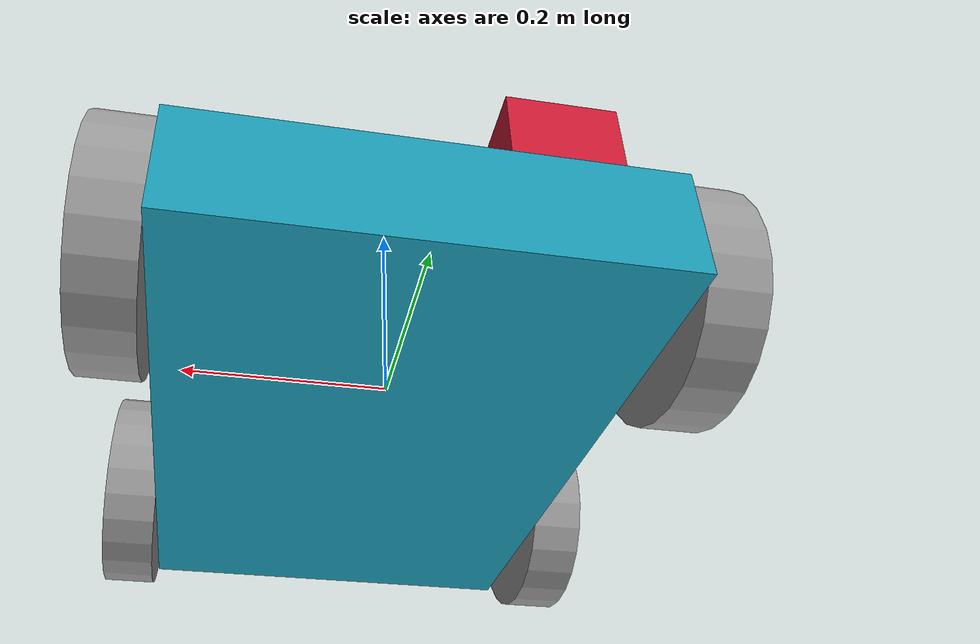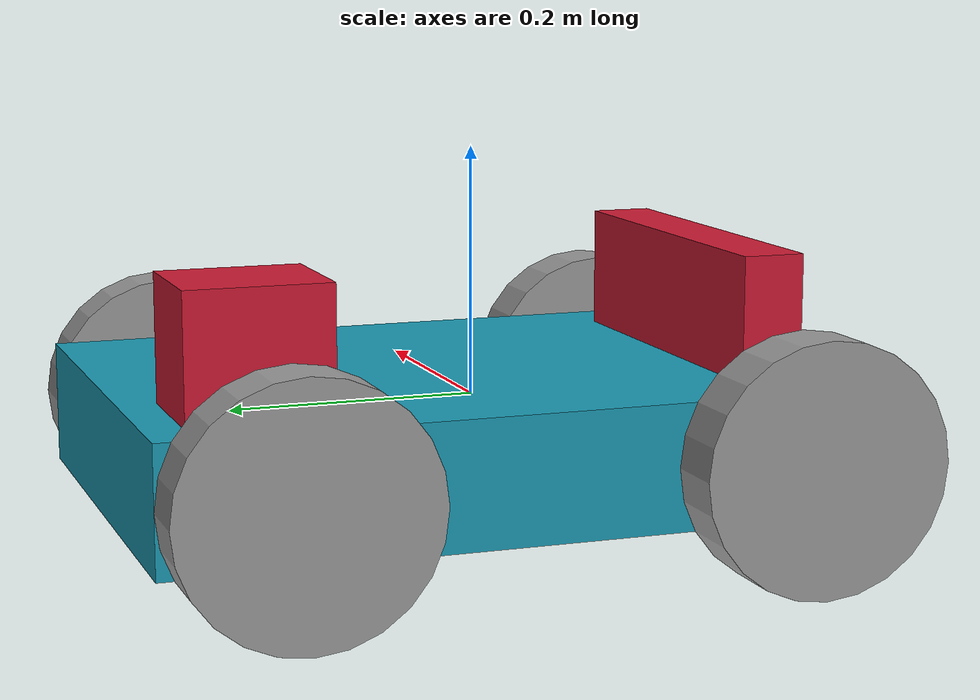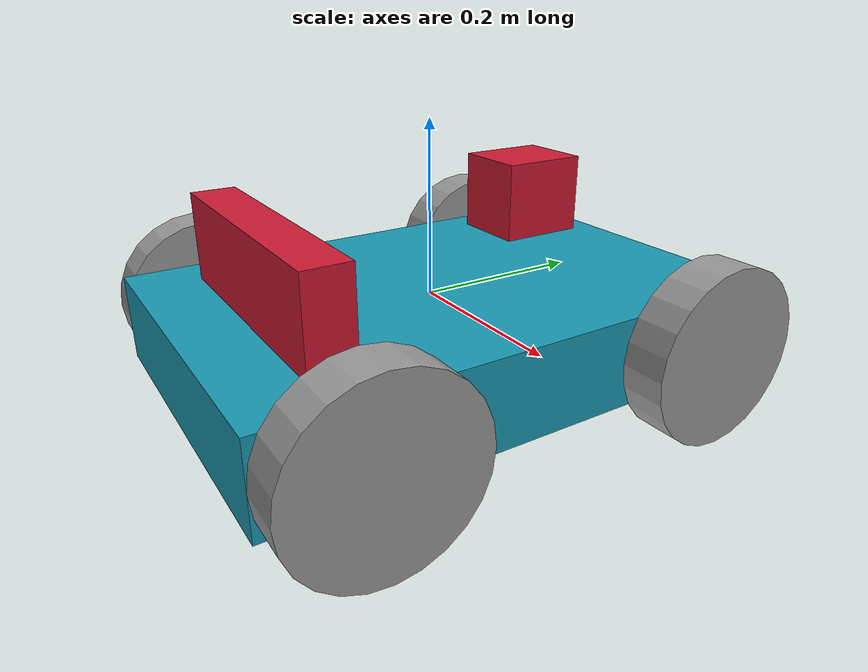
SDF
<?xml version='1.0'?>
<sdf version='1.7'>
  <model name='RoverBot'>
    <link name='link_1'>
      <inertial>
        <mass>1</mass>
        <inertia>
          <ixx>0.166667</ixx>
          <ixy>0</ixy>
          <ixz>0</ixz>
          <iyy>0.166667</iyy>
          <iyz>0</iyz>
          <izz>0.166667</izz>
        </inertia>
        <pose>0 0 0 0 -0 0</pose>
      </inertial>
      <pose>0.016896 -0.001903 -0.028571 0 -0 0</pose>
      <gravity>1</gravity>
      <self_collide>0</self_collide>
      <kinematic>0</kinematic>
      <enable_wind>0</enable_wind>
      <visual name='visual'>
        <pose>0 0 0 0 -0 0</pose>
        <geometry>
          <box>
            <size>0.4 0.6 0.1</size>
          </box>
        </geometry>
        <material>
          <lighting>1</lighting>
          <script>
            <uri>file://media/materials/scripts/gazebo.material</uri>
            <name>Gazebo/Grey</name>
          </script>
          <shader type='pixel'>
            <normal_map>__default__</normal_map>
          </shader>
          <ambient>0.1 0.6 0.7 1</ambient>
          <diffuse>0.7 0.7 0.7 1</diffuse>
          <specular>0.01 0.01 0.01 1</specular>
          <emissive>0 0 0 1</emissive>
        </material>
        <transparency>0</transparency>
        <cast_shadows>1</cast_shadows>
      </visual>
      <collision name='collision'>
        <laser_retro>0</laser_retro>
        <max_contacts>10</max_contacts>
        <pose>0 0 0 0 -0 0</pose>
        <geometry>
          <box>
            <size>0.4 0.6 0.1</size>
          </box>
        </geometry>
        <surface>
          <friction>
            <ode>
              <mu>1</mu>
              <mu2>1</mu2>
              <fdir1>0 0 0</fdir1>
              <slip1>0</slip1>
              <slip2>0</slip2>
            </ode>
            <torsional>
              <coefficient>1</coefficient>
              <patch_radius>0</patch_radius>
              <surface_radius>0</surface_radius>
              <use_patch_radius>1</use_patch_radius>
              <ode>
                <slip>0</slip>
              </ode>
            </torsional>
          </friction>
          <bounce>
            <restitution_coefficient>0</restitution_coefficient>
            <threshold>1e+06</threshold>
          </bounce>
          <contact>
            <collide_without_contact>0</collide_without_contact>
            <collide_without_contact_bitmask>1</collide_without_contact_bitmask>
            <collide_bitmask>1</collide_bitmask>
            <ode>
              <soft_cfm>0</soft_cfm>
              <soft_erp>0.2</soft_erp>
              <kp>1e+13</kp>
              <kd>1</kd>
              <max_vel>0.01</max_vel>
              <min_depth>0</min_depth>
            </ode>
            <bullet>
              <split_impulse>1</split_impulse>
              <split_impulse_penetration_threshold>-0.01</split_impulse_penetration_threshold>
              <soft_cfm>0</soft_cfm>
              <soft_erp>0.2</soft_erp>
              <kp>1e+13</kp>
              <kd>1</kd>
            </bullet>
          </contact>
        </surface>
      </collision>
    </link>
    <link name='link_2'>
      <inertial>
        <mass>1</mass>
        <inertia>
          <ixx>0.145833</ixx>
          <ixy>0</ixy>
          <ixz>0</ixz>
          <iyy>0.145833</iyy>
          <iyz>0</iyz>
          <izz>0.125</izz>
        </inertia>
        <pose>0 0 0 0 -0 0</pose>
      </inertial>
      <pose>0.241896 -0.201903 -0.028571 0 1.5707 0</pose>
      <gravity>1</gravity>
      <self_collide>0</self_collide>
      <kinematic>0</kinematic>
      <enable_wind>0</enable_wind>
      <visual name='visual'>
        <pose>0 0 0 0 -0 0</pose>
        <geometry>
          <cylinder>
            <radius>0.1</radius>
            <length>0.05</length>
          </cylinder>
        </geometry>
        <material>
          <lighting>1</lighting>
          <script>
            <uri>file://media/materials/scripts/gazebo.material</uri>
            <name>Gazebo/Grey</name>
          </script>
          <shader type='pixel'>
            <normal_map>__default__</normal_map>
          </shader>
          <ambient>0 0 0 1</ambient>
          <diffuse>0.7 0.7 0.7 1</diffuse>
          <specular>0.01 0.01 0.01 1</specular>
          <emissive>0 0 0 1</emissive>
        </material>
        <transparency>0</transparency>
        <cast_shadows>1</cast_shadows>
      </visual>
      <collision name='collision'>
        <laser_retro>0</laser_retro>
        <max_contacts>10</max_contacts>
        <pose>0 0 0 0 -0 0</pose>
        <geometry>
          <cylinder>
            <radius>0.1</radius>
            <length>0.05</length>
          </cylinder>
        </geometry>
        <surface>
          <friction>
            <ode>
              <mu>1</mu>
              <mu2>1</mu2>
              <fdir1>0 0 0</fdir1>
              <slip1>0</slip1>
              <slip2>0</slip2>
            </ode>
            <torsional>
              <coefficient>1</coefficient>
              <patch_radius>0</patch_radius>
              <surface_radius>0</surface_radius>
              <use_patch_radius>1</use_patch_radius>
              <ode>
                <slip>0</slip>
              </ode>
            </torsional>
          </friction>
          <bounce>
            <restitution_coefficient>0</restitution_coefficient>
            <threshold>1e+06</threshold>
          </bounce>
          <contact>
            <collide_without_contact>0</collide_without_contact>
            <collide_without_contact_bitmask>1</collide_without_contact_bitmask>
            <collide_bitmask>1</collide_bitmask>
            <ode>
              <soft_cfm>0</soft_cfm>
              <soft_erp>0.2</soft_erp>
              <kp>1e+13</kp>
              <kd>1</kd>
              <max_vel>0.01</max_vel>
              <min_depth>0</min_depth>
            </ode>
            <bullet>
              <split_impulse>1</split_impulse>
              <split_impulse_penetration_threshold>-0.01</split_impulse_penetration_threshold>
              <soft_cfm>0</soft_cfm>
              <soft_erp>0.2</soft_erp>
              <kp>1e+13</kp>
              <kd>1</kd>
            </bullet>
          </contact>
        </surface>
      </collision>
    </link>
    <link name='link_2_clone'>
      <inertial>
        <mass>1</mass>
        <inertia>
          <ixx>0.145833</ixx>
          <ixy>0</ixy>
          <ixz>0</ixz>
          <iyy>0.145833</iyy>
          <iyz>0</iyz>
          <izz>0.125</izz>
        </inertia>
        <pose>0 0 0 0 -0 0</pose>
      </inertial>
      <pose>0.241896 0.198097 -0.028571 0 1.5707 0</pose>
      <gravity>1</gravity>
      <self_collide>0</self_collide>
      <kinematic>0</kinematic>
      <enable_wind>0</enable_wind>
      <visual name='visual'>
        <pose>0 0 0 0 -0 0</pose>
        <geometry>
          <cylinder>
            <radius>0.1</radius>
            <length>0.05</length>
          </cylinder>
        </geometry>
        <material>
          <lighting>1</lighting>
          <script>
            <uri>file://media/materials/scripts/gazebo.material</uri>
            <name>Gazebo/Grey</name>
          </script>
          <shader type='pixel'>
            <normal_map>__default__</normal_map>
          </shader>
          <ambient>0 0 0 1</ambient>
          <diffuse>0.7 0.7 0.7 1</diffuse>
          <specular>0.01 0.01 0.01 1</specular>
          <emissive>0 0 0 1</emissive>
        </material>
        <transparency>0</transparency>
        <cast_shadows>1</cast_shadows>
      </visual>
      <collision name='collision'>
        <laser_retro>0</laser_retro>
        <max_contacts>10</max_contacts>
        <pose>0 0 0 0 -0 0</pose>
        <geometry>
          <cylinder>
            <radius>0.1</radius>
            <length>0.05</length>
          </cylinder>
        </geometry>
        <surface>
          <friction>
            <ode>
              <mu>1</mu>
              <mu2>1</mu2>
              <fdir1>0 0 0</fdir1>
              <slip1>0</slip1>
              <slip2>0</slip2>
            </ode>
            <torsional>
              <coefficient>1</coefficient>
              <patch_radius>0</patch_radius>
              <surface_radius>0</surface_radius>
              <use_patch_radius>1</use_patch_radius>
              <ode>
                <slip>0</slip>
              </ode>
            </torsional>
          </friction>
          <bounce>
            <restitution_coefficient>0</restitution_coefficient>
            <threshold>1e+06</threshold>
          </bounce>
          <contact>
            <collide_without_contact>0</collide_without_contact>
            <collide_without_contact_bitmask>1</collide_without_contact_bitmask>
            <collide_bitmask>1</collide_bitmask>
            <ode>
              <soft_cfm>0</soft_cfm>
              <soft_erp>0.2</soft_erp>
              <kp>1e+13</kp>
              <kd>1</kd>
              <max_vel>0.01</max_vel>
              <min_depth>0</min_depth>
            </ode>
            <bullet>
              <split_impulse>1</split_impulse>
              <split_impulse_penetration_threshold>-0.01</split_impulse_penetration_threshold>
              <soft_cfm>0</soft_cfm>
              <soft_erp>0.2</soft_erp>
              <kp>1e+13</kp>
              <kd>1</kd>
            </bullet>
          </contact>
        </surface>
      </collision>
    </link>
    <link name='link_2_clone_clone'>
      <inertial>
        <mass>1</mass>
        <inertia>
          <ixx>0.145833</ixx>
          <ixy>0</ixy>
          <ixz>0</ixz>
          <iyy>0.145833</iyy>
          <iyz>0</iyz>
          <izz>0.125</izz>
        </inertia>
        <pose>0 0 0 0 -0 0</pose>
      </inertial>
      <pose>-0.208104 -0.201903 -0.028571 0 1.5707 0</pose>
      <gravity>1</gravity>
      <self_collide>0</self_collide>
      <kinematic>0</kinematic>
      <enable_wind>0</enable_wind>
      <visual name='visual'>
        <pose>0 0 0 0 -0 0</pose>
        <geometry>
          <cylinder>
            <radius>0.1</radius>
            <length>0.05</length>
          </cylinder>
        </geometry>
        <material>
          <lighting>1</lighting>
          <script>
            <uri>file://media/materials/scripts/gazebo.material</uri>
            <name>Gazebo/Grey</name>
          </script>
          <shader type='pixel'>
            <normal_map>__default__</normal_map>
          </shader>
          <ambient>0 0 0 1</ambient>
          <diffuse>0.7 0.7 0.7 1</diffuse>
          <specular>0.01 0.01 0.01 1</specular>
          <emissive>0 0 0 1</emissive>
        </material>
        <transparency>0</transparency>
        <cast_shadows>1</cast_shadows>
      </visual>
      <collision name='collision'>
        <laser_retro>0</laser_retro>
        <max_contacts>10</max_contacts>
        <pose>0 0 0 0 -0 0</pose>
        <geometry>
          <cylinder>
            <radius>0.1</radius>
            <length>0.05</length>
          </cylinder>
        </geometry>
        <surface>
          <friction>
            <ode>
              <mu>1</mu>
              <mu2>1</mu2>
              <fdir1>0 0 0</fdir1>
              <slip1>0</slip1>
              <slip2>0</slip2>
            </ode>
            <torsional>
              <coefficient>1</coefficient>
              <patch_radius>0</patch_radius>
              <surface_radius>0</surface_radius>
              <use_patch_radius>1</use_patch_radius>
              <ode>
                <slip>0</slip>
              </ode>
            </torsional>
          </friction>
          <bounce>
            <restitution_coefficient>0</restitution_coefficient>
            <threshold>1e+06</threshold>
          </bounce>
          <contact>
            <collide_without_contact>0</collide_without_contact>
            <collide_without_contact_bitmask>1</collide_without_contact_bitmask>
            <collide_bitmask>1</collide_bitmask>
            <ode>
              <soft_cfm>0</soft_cfm>
              <soft_erp>0.2</soft_erp>
              <kp>1e+13</kp>
              <kd>1</kd>
              <max_vel>0.01</max_vel>
              <min_depth>0</min_depth>
            </ode>
            <bullet>
              <split_impulse>1</split_impulse>
              <split_impulse_penetration_threshold>-0.01</split_impulse_penetration_threshold>
              <soft_cfm>0</soft_cfm>
              <soft_erp>0.2</soft_erp>
              <kp>1e+13</kp>
              <kd>1</kd>
            </bullet>
          </contact>
        </surface>
      </collision>
    </link>
    <link name='link_2_clone_clone_clone'>
      <inertial>
        <mass>1</mass>
        <inertia>
          <ixx>0.145833</ixx>
          <ixy>0</ixy>
          <ixz>0</ixz>
          <iyy>0.145833</iyy>
          <iyz>0</iyz>
          <izz>0.125</izz>
        </inertia>
        <pose>0 0 0 0 -0 0</pose>
      </inertial>
      <pose>-0.208104 0.198097 -0.028571 0 1.5707 0</pose>
      <gravity>1</gravity>
      <self_collide>0</self_collide>
      <kinematic>0</kinematic>
      <enable_wind>0</enable_wind>
      <visual name='visual'>
        <pose>0 0 0 0 -0 0</pose>
        <geometry>
          <cylinder>
            <radius>0.1</radius>
            <length>0.05</length>
          </cylinder>
        </geometry>
        <material>
          <lighting>1</lighting>
          <script>
            <uri>file://media/materials/scripts/gazebo.material</uri>
            <name>Gazebo/Grey</name>
          </script>
          <shader type='pixel'>
            <normal_map>__default__</normal_map>
          </shader>
          <ambient>0 0 0 1</ambient>
          <diffuse>0.7 0.7 0.7 1</diffuse>
          <specular>0.01 0.01 0.01 1</specular>
          <emissive>0 0 0 1</emissive>
        </material>
        <transparency>0</transparency>
        <cast_shadows>1</cast_shadows>
      </visual>
      <collision name='collision'>
        <laser_retro>0</laser_retro>
        <max_contacts>10</max_contacts>
        <pose>0 0 0 0 -0 0</pose>
        <geometry>
          <cylinder>
            <radius>0.1</radius>
            <length>0.05</length>
          </cylinder>
        </geometry>
        <surface>
          <friction>
            <ode>
              <mu>1</mu>
              <mu2>1</mu2>
              <fdir1>0 0 0</fdir1>
              <slip1>0</slip1>
              <slip2>0</slip2>
            </ode>
            <torsional>
              <coefficient>1</coefficient>
              <patch_radius>0</patch_radius>
              <surface_radius>0</surface_radius>
              <use_patch_radius>1</use_patch_radius>
              <ode>
                <slip>0</slip>
              </ode>
            </torsional>
          </friction>
          <bounce>
            <restitution_coefficient>0</restitution_coefficient>
            <threshold>1e+06</threshold>
          </bounce>
          <contact>
            <collide_without_contact>0</collide_without_contact>
            <collide_without_contact_bitmask>1</collide_without_contact_bitmask>
            <collide_bitmask>1</collide_bitmask>
            <ode>
              <soft_cfm>0</soft_cfm>
              <soft_erp>0.2</soft_erp>
              <kp>1e+13</kp>
              <kd>1</kd>
              <max_vel>0.01</max_vel>
              <min_depth>0</min_depth>
            </ode>
            <bullet>
              <split_impulse>1</split_impulse>
              <split_impulse_penetration_threshold>-0.01</split_impulse_penetration_threshold>
              <soft_cfm>0</soft_cfm>
              <soft_erp>0.2</soft_erp>
              <kp>1e+13</kp>
              <kd>1</kd>
            </bullet>
          </contact>
        </surface>
      </collision>
    </link>
    <link name='link_3'>
      <inertial>
        <mass>0.00107576</mass>
        <inertia>
          <ixx>2.02e-06</ixx>
          <ixy>0</ixy>
          <ixz>0</ixz>
          <iyy>1.72e-06</iyy>
          <iyz>0</iyz>
          <izz>1.97e-06</izz>
        </inertia>
        <pose>0 0 0 0 -0 0</pose>
      </inertial>
      <pose>-0.101376 0.211415 0.071429 0 -0 0</pose>
      <gravity>1</gravity>
      <self_collide>0</self_collide>
      <kinematic>0</kinematic>
      <enable_wind>0</enable_wind>
      <visual name='visual'>
        <pose>0 0 0 0 -0 0</pose>
        <geometry>
          <box>
            <size>0.09633 0.112486 0.1</size>
          </box>
        </geometry>
        <material>
          <lighting>1</lighting>
          <script>
            <uri>file://media/materials/scripts/gazebo.material</uri>
            <name>Gazebo/Grey</name>
          </script>
          <shader type='pixel'>
            <normal_map>__default__</normal_map>
          </shader>
          <ambient>0.8 0.1 0.2 1</ambient>
          <diffuse>0.7 0.7 0.7 1</diffuse>
          <specular>0.01 0.01 0.01 1</specular>
          <emissive>0 0 0 1</emissive>
        </material>
        <transparency>0</transparency>
        <cast_shadows>1</cast_shadows>
      </visual>
      <collision name='collision'>
        <laser_retro>0</laser_retro>
        <max_contacts>10</max_contacts>
        <pose>0 0 0 0 -0 0</pose>
        <geometry>
          <box>
            <size>0.09633 0.112486 0.099352</size>
          </box>
        </geometry>
        <surface>
          <friction>
            <ode>
              <mu>1</mu>
              <mu2>1</mu2>
              <fdir1>0 0 0</fdir1>
              <slip1>0</slip1>
              <slip2>0</slip2>
            </ode>
            <torsional>
              <coefficient>1</coefficient>
              <patch_radius>0</patch_radius>
              <surface_radius>0</surface_radius>
              <use_patch_radius>1</use_patch_radius>
              <ode>
                <slip>0</slip>
              </ode>
            </torsional>
          </friction>
          <bounce>
            <restitution_coefficient>0</restitution_coefficient>
            <threshold>1e+06</threshold>
          </bounce>
          <contact>
            <collide_without_contact>0</collide_without_contact>
            <collide_without_contact_bitmask>1</collide_without_contact_bitmask>
            <collide_bitmask>1</collide_bitmask>
            <ode>
              <soft_cfm>0</soft_cfm>
              <soft_erp>0.2</soft_erp>
              <kp>1e+13</kp>
              <kd>1</kd>
              <max_vel>0.01</max_vel>
              <min_depth>0</min_depth>
            </ode>
            <bullet>
              <split_impulse>1</split_impulse>
              <split_impulse_penetration_threshold>-0.01</split_impulse_penetration_threshold>
              <soft_cfm>0</soft_cfm>
              <soft_erp>0.2</soft_erp>
              <kp>1e+13</kp>
              <kd>1</kd>
            </bullet>
          </contact>
        </surface>
      </collision>
    </link>
    <link name='link_4'>
      <inertial>
        <mass>0.0055058</mass>
        <inertia>
          <ixx>1.226e-05</ixx>
          <ixy>0</ixy>
          <ixz>0</ixz>
          <iyy>8.418e-05</iyy>
          <iyz>0</iyz>
          <izz>8.541e-05</izz>
        </inertia>
        <pose>0 0 0 0 -0 0</pose>
      </inertial>
      <pose>0.016896 -0.201903 0.071429 0 -0 0</pose>
      <gravity>1</gravity>
      <self_collide>0</self_collide>
      <kinematic>0</kinematic>
      <enable_wind>0</enable_wind>
      <visual name='visual'>
        <pose>0 0 0 0 -0 0</pose>
        <geometry>
          <box>
            <size>0.3 0.05 0.1</size>
          </box>
        </geometry>
        <material>
          <lighting>1</lighting>
          <script>
            <uri>file://media/materials/scripts/gazebo.material</uri>
            <name>Gazebo/Grey</name>
          </script>
          <shader type='pixel'>
            <normal_map>__default__</normal_map>
          </shader>
          <ambient>0.8 0.1 0.2 1</ambient>
          <diffuse>0.7 0.7 0.7 1</diffuse>
          <specular>0.01 0.01 0.01 1</specular>
          <emissive>0 0 0 1</emissive>
        </material>
        <transparency>0</transparency>
        <cast_shadows>1</cast_shadows>
      </visual>
      <collision name='collision'>
        <laser_retro>0</laser_retro>
        <max_contacts>10</max_contacts>
        <pose>0 0 0 0 -0 0</pose>
        <geometry>
          <box>
            <size>0.3 0.05 0.1</size>
          </box>
        </geometry>
        <surface>
          <friction>
            <ode>
              <mu>1</mu>
              <mu2>1</mu2>
              <fdir1>0 0 0</fdir1>
              <slip1>0</slip1>
              <slip2>0</slip2>
            </ode>
            <torsional>
              <coefficient>1</coefficient>
              <patch_radius>0</patch_radius>
              <surface_radius>0</surface_radius>
              <use_patch_radius>1</use_patch_radius>
              <ode>
                <slip>0</slip>
              </ode>
            </torsional>
          </friction>
          <bounce>
            <restitution_coefficient>0</restitution_coefficient>
            <threshold>1e+06</threshold>
          </bounce>
          <contact>
            <collide_without_contact>0</collide_without_contact>
            <collide_without_contact_bitmask>1</collide_without_contact_bitmask>
            <collide_bitmask>1</collide_bitmask>
            <ode>
              <soft_cfm>0</soft_cfm>
              <soft_erp>0.2</soft_erp>
              <kp>1e+13</kp>
              <kd>1</kd>
              <max_vel>0.01</max_vel>
              <min_depth>0</min_depth>
            </ode>
            <bullet>
              <split_impulse>1</split_impulse>
              <split_impulse_penetration_threshold>-0.01</split_impulse_penetration_threshold>
              <soft_cfm>0</soft_cfm>
              <soft_erp>0.2</soft_erp>
              <kp>1e+13</kp>
              <kd>1</kd>
            </bullet>
          </contact>
        </surface>
      </collision>
    </link>
    <joint name='link_1_JOINT_0' type='revolute'>
      <parent>link_1</parent>
      <child>link_2_clone_clone</child>
      <pose>0 0 0 0 -0 0</pose>
      <axis>
        <xyz>0 0 1</xyz>
        <limit>
          <lower>-1.79769e+308</lower>
          <upper>1.79769e+308</upper>
          <effort>-1</effort>
          <velocity>-1</velocity>
        </limit>
        <dynamics>
          <spring_reference>0</spring_reference>
          <spring_stiffness>0</spring_stiffness>
          <damping>0</damping>
          <friction>0</friction>
        </dynamics>
      </axis>
      <physics>
        <ode>
          <limit>
            <cfm>0</cfm>
            <erp>0.2</erp>
          </limit>
          <suspension>
            <cfm>0</cfm>
            <erp>0.2</erp>
          </suspension>
        </ode>
      </physics>
    </joint>
    <joint name='link_1_JOINT_1' type='revolute'>
      <parent>link_1</parent>
      <child>link_2</child>
      <pose>0 0 0 0 -0 0</pose>
      <axis>
        <xyz>0 0 1</xyz>
        <limit>
          <lower>-1.79769e+308</lower>
          <upper>1.79769e+308</upper>
          <effort>-1</effort>
          <velocity>-1</velocity>
        </limit>
        <dynamics>
          <spring_reference>0</spring_reference>
          <spring_stiffness>0</spring_stiffness>
          <damping>0</damping>
          <friction>0</friction>
        </dynamics>
      </axis>
      <physics>
        <ode>
          <limit>
            <cfm>0</cfm>
            <erp>0.2</erp>
          </limit>
          <suspension>
            <cfm>0</cfm>
            <erp>0.2</erp>
          </suspension>
        </ode>
      </physics>
    </joint>
    <joint name='link_1_JOINT_4' type='revolute'>
      <parent>link_1</parent>
      <child>link_2_clone_clone_clone</child>
      <pose>0 0 0 0 -0 0</pose>
      <axis>
        <xyz>0 0 1</xyz>
        <limit>
          <lower>-1.79769e+308</lower>
          <upper>1.79769e+308</upper>
          <effort>-1</effort>
          <velocity>-1</velocity>
        </limit>
        <dynamics>
          <spring_reference>0</spring_reference>
          <spring_stiffness>0</spring_stiffness>
          <damping>0</damping>
          <friction>0</friction>
        </dynamics>
      </axis>
      <physics>
        <ode>
          <limit>
            <cfm>0</cfm>
            <erp>0.2</erp>
          </limit>
          <suspension>
            <cfm>0</cfm>
            <erp>0.2</erp>
          </suspension>
        </ode>
      </physics>
    </joint>
    <joint name='link_1_JOINT_5' type='revolute'>
      <parent>link_1</parent>
      <child>link_2_clone</child>
      <pose>0 0 0 0 -0 0</pose>
      <axis>
        <xyz>0 0 1</xyz>
        <limit>
          <lower>-1.79769e+308</lower>
          <upper>1.79769e+308</upper>
          <effort>-1</effort>
          <velocity>-1</velocity>
        </limit>
        <dynamics>
          <spring_reference>0</spring_reference>
          <spring_stiffness>0</spring_stiffness>
          <damping>0</damping>
          <friction>0</friction>
        </dynamics>
      </axis>
      <physics>
        <ode>
          <limit>
            <cfm>0</cfm>
            <erp>0.2</erp>
          </limit>
          <suspension>
            <cfm>0</cfm>
            <erp>0.2</erp>
          </suspension>
        </ode>
      </physics>
    </joint>
    <joint name='link_1_JOINT_6' type='fixed'>
      <parent>link_1</parent>
      <child>link_3</child>
      <pose>0 0 0 0 -0 0</pose>
      <physics>
        <ode>
          <limit>
            <cfm>0</cfm>
            <erp>0.2</erp>
          </limit>
          <suspension>
            <cfm>0</cfm>
            <erp>0.2</erp>
          </suspension>
        </ode>
      </physics>
    </joint>
    <joint name='link_1_JOINT_7' type='fixed'>
      <parent>link_1</parent>
      <child>link_4</child>
      <pose>0 0 0 0 -0 0</pose>
      <physics>
        <ode>
          <limit>
            <cfm>0</cfm>
            <erp>0.2</erp>
          </limit>
          <suspension>
            <cfm>0</cfm>
            <erp>0.2</erp>
          </suspension>
        </ode>
      </physics>
    </joint>
    <static>0</static>
    <allow_auto_disable>1</allow_auto_disable>
  </model>
</sdf>
